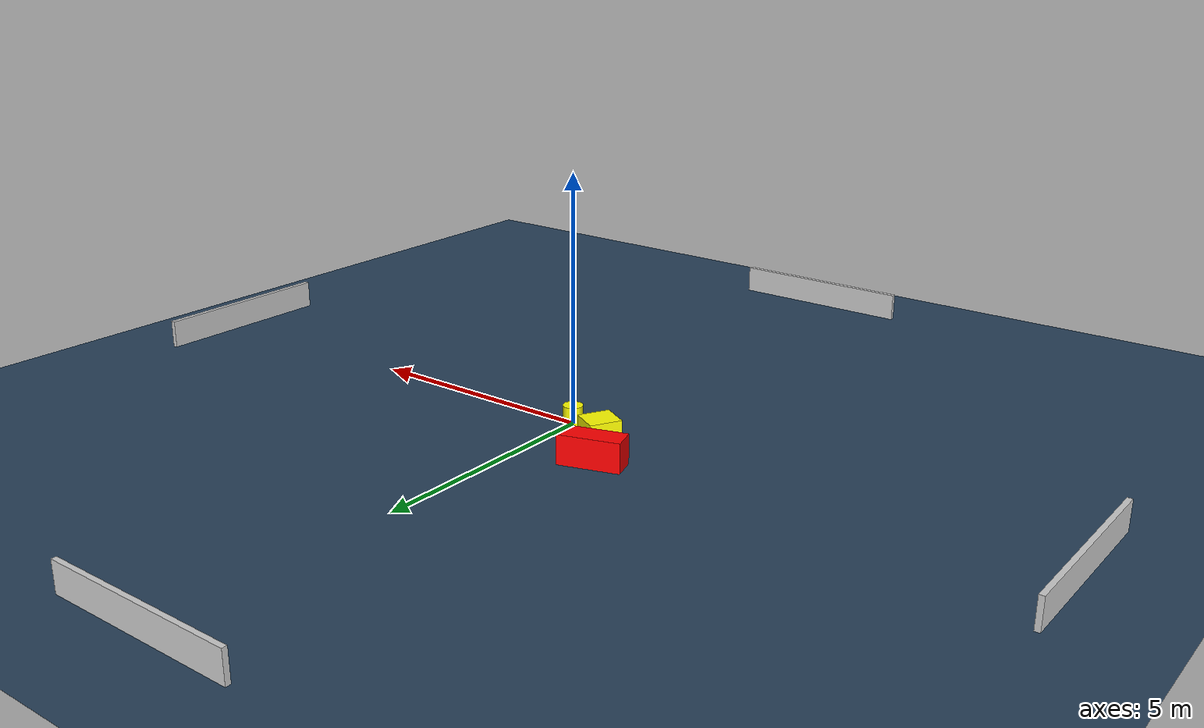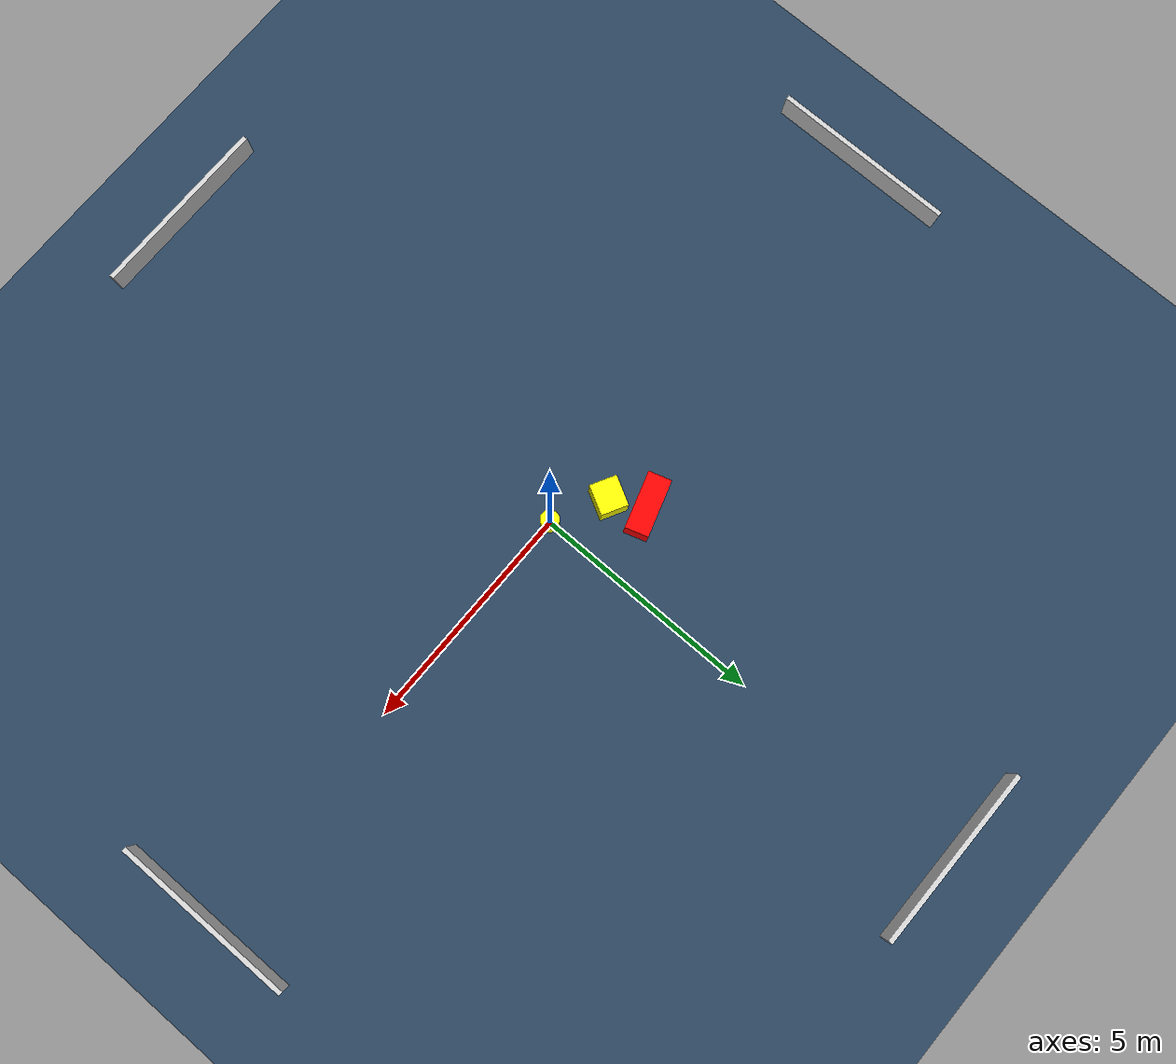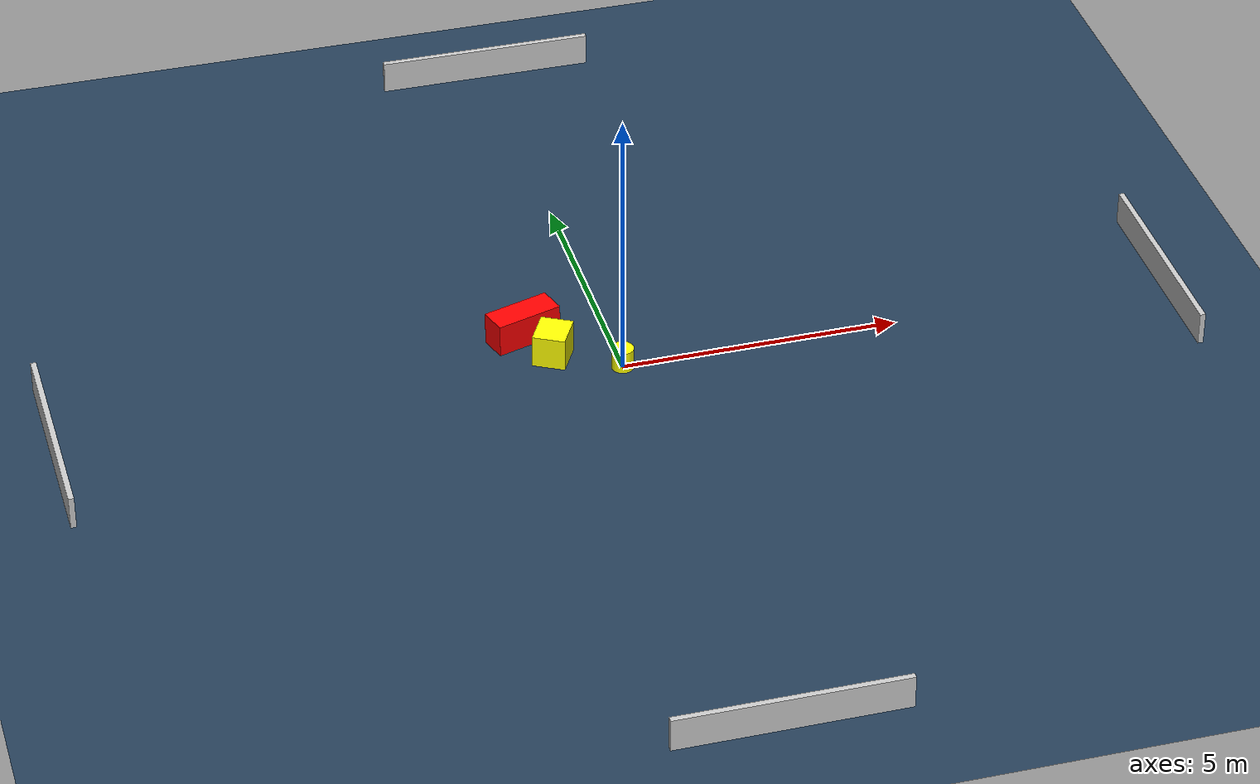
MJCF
<?xml version="1.0" ?>
<mujoco model="generated_environment">
  <option timestep="0.01" integrator="RK4" cone="elliptic"/>
  <default>
    <geom density="1"/>
  </default>
  <asset>
    <texture builtin="gradient" height="3072" name="skybox" rgb1="0.3 0.5 0.7" rgb2="0 0 0" type="skybox" width="512"/>
    <texture builtin="checker" height="300" name="groundplane" rgb1="0.2 0.3 0.4" rgb2="0.1 0.2 0.3" type="2d" width="300"/>
    <material name="groundplane" reflectance="0.2" texrepeat="5 5" texture="groundplane"/>
  </asset>
  <worldbody>
    <light dir="0 0 -1" directional="true" pos="0 0 1.5"/>
    <geom condim="3" friction="0.5 0.005 0.001" material="groundplane" name="floor" pos="0 0 0" size="0 0 0.05" type="plane"/>
    <body name="walls">
      <geom name="wall_1" condim="4" pos="-10.0 0.0 0.3" rgba="0.800000011920929 0.800000011920929 0.800000011920929 1.0" size="0.05 2.0 0.3" type="box"/>
      <geom name="wall_2" condim="4" pos="10.0 0.0 0.3" rgba="0.800000011920929 0.800000011920929 0.800000011920929 1.0" size="0.05 2.0 0.3" type="box"/>
      <geom name="wall_3" condim="4" pos="0.0 -10.0 0.3" rgba="0.800000011920929 0.800000011920929 0.800000011920929 1.0" size="2.0 0.05 0.3" type="box"/>
      <geom name="wall_4" condim="4" pos="0.0 10.0 0.3" rgba="0.800000011920929 0.800000011920929 0.800000011920929 1.0" size="2.0 0.05 0.3" type="box"/>
    </body>
    <body name="robot">
      <joint name="joint_x" type="slide" pos="0 0 0" axis="1 0 0"/>
      <joint name="joint_y" type="slide" pos="0 0 0" axis="0 1 0"/>
      <geom name="robot" type="cylinder" pos="0.0 0.0 0.2" size="0.2 0.2 0.0" mass="5.0" friction="1.0 0.005 0.0001" condim="4" rgba="1.0 1.0 0.0 1.0"/>
    </body>
    <body name="obstacle_1_movable">
      <geom name="obstacle_1_movable" condim="4" pos="-1.1011541044155218 0.5923148156807662 0.3" euler="0 0 61.54402211776489" friction="0.0 0.005 0.001" rgba="1.0 1.0 0.0 1.0" size="0.32593296892994106 0.2933946748628362 0.3" type="box" mass="0.1"/>
      <joint type="free"/>
    </body>
    <body name="obstacle_2_static">
      <geom name="obstacle_2_static" condim="4" pos="-1.4709552427954657 1.2978120244652465 0.3" euler="0 0 17.260282813359375" friction="0.0 0.005 0.001" rgba="1.0 0.0 0.0 1.0" size="0.6166245011248059 0.2510806649903629 0.3" type="box"/>
    </body>
  </worldbody>
  <actuator>
    <motor name="actuator_x" joint="joint_x" gear="1" ctrlrange="-1 1"/>
    <motor name="actuator_y" joint="joint_y" gear="1" ctrlrange="-1 1"/>
  </actuator>
</mujoco>
